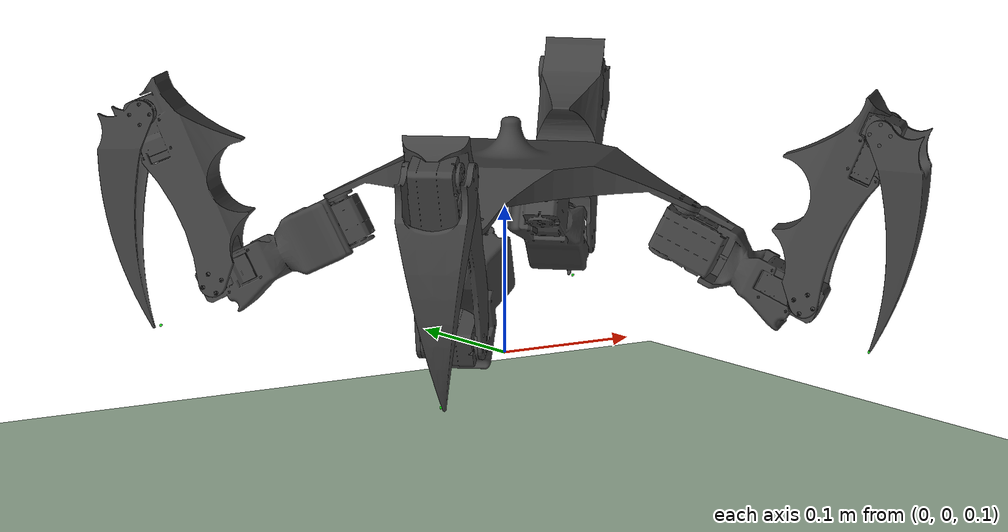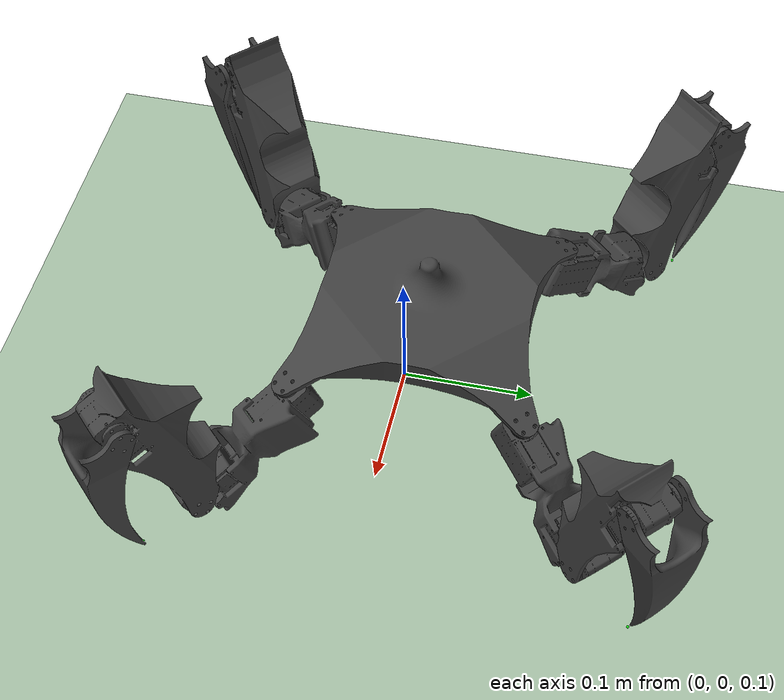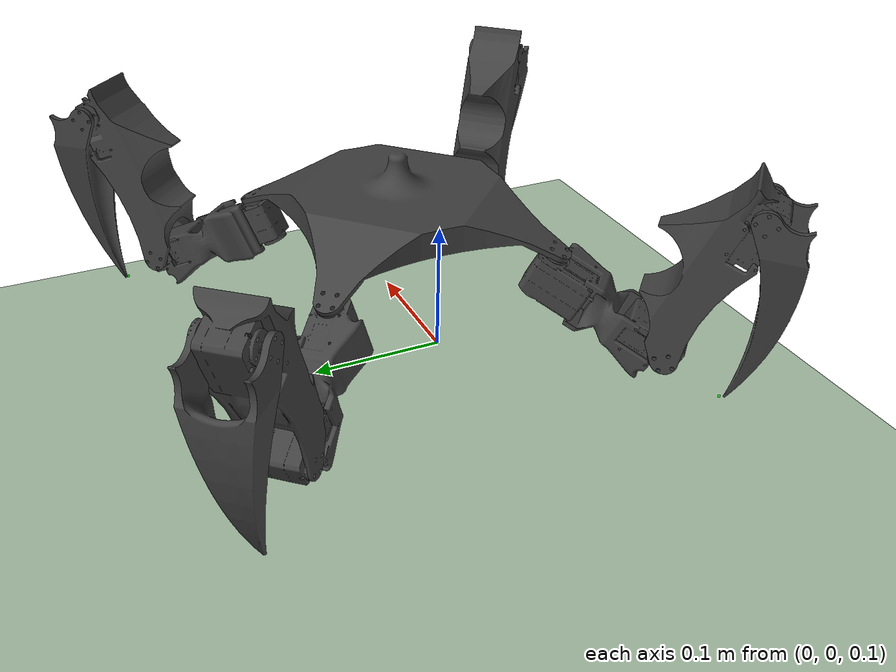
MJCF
<mujoco model="Bot1">
  <compiler angle="radian" meshdir="./"/>

  <!-- Simulation options with better contact handling -->
  <option timestep="0.002" iterations="50" solver="Newton" tolerance="1e-10">
    <flag contact="enable" gravity="enable"/>
  </option>

  <!-- Default settings for stiff joint limits and friction -->
  <default>
    <joint solimplimit="0.999 0.999 0.001" solreflimit="0.005 1" armature="0.01"/>
    <!-- Default friction: sliding, torsional, rolling -->
    <geom friction="1.5 0.005 0.001" solimp="0.95 0.99 0.001" solref="0.002 1" condim="4"/>
  </default>

  <asset>
    <mesh name="part_1" content_type="model/stl" file="part_1.stl"/>
    <mesh name="part_1__2" content_type="model/stl" file="part_1__2.stl"/>
    <mesh name="part_1__3" content_type="model/stl" file="part_1__3.stl"/>
    <mesh name="part_1__4" content_type="model/stl" file="part_1__4.stl"/>
    <!-- Terrain texture -->
    <texture name="grid" type="2d" builtin="checker" width="512" height="512" rgb1="0.7 0.8 0.7" rgb2="0.6 0.7 0.6"/>
    <material name="grid_mat" texture="grid" texrepeat="20 20"/>
  </asset>

  <worldbody>
    <!-- Ground plane with high friction -->
    <geom name="floor" type="plane" size="10 10 0.1" material="grid_mat" friction="1.5 0.01 0.001"/>

    <body name="part_1" pos="0 0 0.2">
      <inertial pos="0.0209601 0.0241499 0.0199273" quat="0.5 0.5 -0.5 0.5" mass="0.552084" diaginertia="0.00201256 0.0010312 0.0010312"/>
      <joint name="floor_to_base" type="free"/>
      <!-- Visual mesh (no collision) -->
      <geom pos="-0.0290399 -0.0153501 0.0106225" quat="1 5.21775e-08 -2.02329e-09 1.35415e-08" type="mesh" contype="0" conaffinity="0" rgba="0.25098 0.25098 0.25098 1" mesh="part_1" />

      <body name="part_1_2" pos="-0.063914 -0.0607244 -0.00112728" quat="0.382923 0.21134 0.0847142 -0.895282">
        <inertial pos="0.0508216 0.00300079 -0.0201979" quat="0.28265 0.663346 0.272142 0.637197" mass="0.139372" diaginertia="0.000187026 0.000186955 2.81071e-05"/>
        <joint limited="true" name="sh_roll_1" pos="0 0 0" axis="0 0 1" range="-2.22431 2.10411"/>
        <geom pos="-0.595484 -1.2957 0.863499" quat="1.32679e-06 1 0 0" type="mesh" contype="0" conaffinity="0" rgba="0.25098 0.25098 0.25098 1" mesh="part_1__2" />
        <body name="part_1_3" pos="0.1016 -0.0172 -0.0172" quat="-0.487469 0.487469 0.512225 0.512224">
          <inertial pos="0.0786937 -0.0129147 0.0184042" quat="0.466512 0.502695 0.4988 0.529964" mass="0.191635" diaginertia="0.000252901 0.000249902 5.35798e-05"/>
          <joint limited="true" name="sh_yaw_1" pos="0 0 0" axis="0 0 1" range="-0.0202957 2.99912"/>
          <geom pos="-0.600864 0.882908 1.34578" quat="1.32679e-06 1 0 0" type="mesh" contype="0" conaffinity="0" rgba="0.25098 0.25098 0.25098 1" mesh="part_1__3" />
          <body name="part_1_4" pos="0.1253 0 -0.0007">
            <inertial pos="-0.0423193 0.0357184 0.0189022" quat="0.590331 0.590316 0.389231 0.389275" mass="0.0518909" diaginertia="5.92899e-05 5.27497e-05 1.31168e-05"/>
            <joint limited="true" name="kn_yaw_1" pos="0 0 0" axis="0 0 1" range="-1.8675 0"/>
            <geom pos="0 0 0" quat="0.566404 0 0 -0.824127" type="mesh" contype="0" conaffinity="0" rgba="0.25098 0.25098 0.25098 1" mesh="part_1__4"/>
            <!-- Foot contact sphere -->
            <geom name="foot1_contact" type="sphere" size="0.001" pos="-0.14 0.05 0.02" rgba="0 1 0 0.8" friction="2.0 0.02 0.002"/>
          </body>
        </body>
      </body>
      <body name="part_1_5" pos="0.105834 -0.0607243 -0.00112728" quat="0.897395 0.0858871 0.210866 -0.377943">
        <inertial pos="0.0508216 0.00300079 -0.0201979" quat="0.28265 0.663346 0.272142 0.637197" mass="0.139372" diaginertia="0.000187026 0.000186955 2.81071e-05"/>
        <joint limited="true" name="sh_roll_2" pos="0 0 0" axis="0 0 1" range="-2.1763 2.12593"/>
        <geom pos="-0.595484 -1.2957 0.863499" quat="1.32679e-06 1 0 0" type="mesh" contype="0" conaffinity="0" rgba="0.25098 0.25098 0.25098 1" mesh="part_1__2" />
        <body name="part_1_6" pos="0.1016 -0.0172 -0.0172" quat="-0.486859 0.486859 0.512805 0.512804">
          <inertial pos="0.0786937 -0.0129147 0.0184042" quat="0.466512 0.502695 0.4988 0.529964" mass="0.191635" diaginertia="0.000252901 0.000249902 5.35798e-05"/>
          <joint limited="true" name="sh_yaw_2" pos="0 0 0" axis="0 0 1" range="-0.00046306 3.01728"/>
          <geom pos="-0.600864 0.882908 1.34578" quat="1.32679e-06 1 0 0" type="mesh" contype="0" conaffinity="0" rgba="0.25098 0.25098 0.25098 1" mesh="part_1__3" />
          <body name="part_1_7" pos="0.1253 0 -0.0007" quat="0.572069 0 0 -0.820205">
            <inertial pos="-0.0181801 -0.0523088 0.0189022" quat="0.706958 0.706995 -0.0135554 -0.0135832" mass="0.0518909" diaginertia="5.929e-05 5.27497e-05 1.31167e-05"/>
            <joint limited="true" name="kn_yaw_2" pos="0 0 0" axis="0 0 1" range="-1.89874 0.00367303"/>
            <geom pos="0 0 0" quat="1 0 0 0" type="mesh" contype="0" conaffinity="0" rgba="0.25098 0.25098 0.25098 1" mesh="part_1__4"/>
            <!-- Foot contact sphere -->
            <geom name="foot2_contact" type="sphere" size="0.001" pos="0 -0.15 0.02" rgba="0 1 0 0.8" friction="2.0 0.02 0.002"/>
          </body>
        </body>
      </body>
      <body name="part_1_8" pos="0.105834 0.109024 -0.00112726" quat="0.973371 -0.165335 0.156542 -0.0265898">
        <inertial pos="0.030927 0.0404396 -0.0201979" quat="0.523111 0.697014 0.00908574 -0.490351" mass="0.139372" diaginertia="0.000187026 0.000186955 2.8107e-05"/>
        <joint limited="true" name="sh_roll_3" pos="0 0 0" axis="0 0 1" range="-2.22029 2.10813"/>
        <geom pos="0.592033 -1.29728 0.863499" quat="1.20631e-06 0.909188 0.416385 5.52458e-07" type="mesh" contype="0" conaffinity="0" rgba="0.25098 0.25098 0.25098 1" mesh="part_1__2" />
        <body name="part_1_9" pos="0.0793927 0.0656901 -0.0172" quat="0.642892 -0.642894 -0.294429 0.294428">
          <inertial pos="-0.0182232 -0.0776363 0.0184042" quat="0.705732 0.707663 -0.0267869 0.0209295" mass="0.191635" diaginertia="0.000252901 0.000249902 5.35798e-05"/>
          <joint limited="true" name="sh_yaw_3" pos="0 0 0" axis="0 0 1" range="-0.00192597 3.00877"/>
          <geom pos="0.921634 0.539587 1.34578" quat="9.05808e-07 0.682704 -0.730695 -9.69483e-07" type="mesh" contype="0" conaffinity="0" rgba="0.25098 0.25098 0.25098 1" mesh="part_1__3" />
          <body name="part_1_10" pos="-0.00849973 -0.125011 -0.0007" quat="0.211057 0 0 0.977474">
            <inertial pos="-0.0181801 -0.0523088 0.0189022" quat="0.706958 0.706995 -0.0135554 -0.0135832" mass="0.0518909" diaginertia="5.929e-05 5.27497e-05 1.31167e-05"/>
            <joint limited="true" name="kn_yaw_3" pos="0 0 0" axis="0 0 1" range="-1.86497 0.0123759"/>
            <geom pos="0 0 0" quat="1 0 0 0" type="mesh" contype="0" conaffinity="0" rgba="0.25098 0.25098 0.25098 1" mesh="part_1__4"/>
            <!-- Foot contact sphere -->
            <geom name="foot3_contact" type="sphere" size="0.001" pos="0 -0.15 0.02" rgba="0 1 0 0.8" friction="2.0 0.02 0.002"/>
          </body>
        </body>
      </body>
      <body name="part_1_11" pos="-0.0639141 0.109024 -0.00112726" quat="0.344134 -0.207508 0.0937099 0.910895">
        <inertial pos="0.0508216 0.00300079 -0.0201979" quat="0.28265 0.663346 0.272142 0.637197" mass="0.139372" diaginertia="0.000187026 0.000186955 2.81071e-05"/>
        <joint limited="true" name="sh_roll_4" pos="0 0 0" axis="0 0 1" range="-2.2539 2.0686"/>
        <geom pos="-0.595484 -1.2957 0.863499" quat="1.32679e-06 1 0 0" type="mesh" contype="0" conaffinity="0" rgba="0.25098 0.25098 0.25098 1" mesh="part_1__2" />
        <body name="part_1_12" pos="0.1016 -0.0172 -0.0172" quat="0.707105 -0.707108 0 0">
          <inertial pos="-0.0174934 -0.077804 0.0184042" quat="0.705627 0.70778 -0.0234651 0.024243" mass="0.191635" diaginertia="0.000252901 0.000249902 5.35797e-05"/>
          <joint limited="true" name="sh_yaw_4" pos="0 0 0" axis="0 0 1" range="-0.00288512 3.0168"/>
          <geom pos="0.916527 0.548217 1.34578" quat="9.10349e-07 0.686127 -0.727482 -9.6522e-07" type="mesh" contype="0" conaffinity="0" rgba="0.25098 0.25098 0.25098 1" mesh="part_1__3" />
          <body name="part_1_13" pos="-0.00732563 -0.125086 -0.0007" quat="0.686127 0 0 -0.727482">
            <inertial pos="-0.0422016 0.0358574 0.0189022" quat="0.590971 0.590956 0.38826 0.388304" mass="0.0518909" diaginertia="5.929e-05 5.27497e-05 1.31167e-05"/>
            <joint limited="true" name="kn_yaw_4" pos="0 0 0" axis="0 0 1" range="-1.84416 0.0207427"/>
            <geom pos="0 0 0" quat="0.565052 0 0 -0.825055" type="mesh" contype="0" conaffinity="0" rgba="0.25098 0.25098 0.25098 1" mesh="part_1__4"/>
            <!-- Foot contact sphere -->
            <geom name="foot4_contact" type="sphere" size="0.001" pos="-0.14 0.05 0.02" rgba="0 1 0 0.8" friction="2.0 0.02 0.002"/>
          </body>
        </body>
      </body>
    </body>
  </worldbody>

  <actuator>
    <!-- Leg 1 -->
    <motor name="sh_roll_1_motor" joint="sh_roll_1" gear="3" ctrlrange="-10 10"/>
    <motor name="sh_yaw_1_motor" joint="sh_yaw_1" gear="3" ctrlrange="-10 10"/>
    <motor name="kn_yaw_1_motor" joint="kn_yaw_1" gear="3" ctrlrange="-10 10"/>

    <!-- Leg 2 -->
    <motor name="sh_roll_2_motor" joint="sh_roll_2" gear="3" ctrlrange="-10 10"/>
    <motor name="sh_yaw_2_motor" joint="sh_yaw_2" gear="3" ctrlrange="-10 10"/>
    <motor name="kn_yaw_2_motor" joint="kn_yaw_2" gear="3" ctrlrange="-10 10"/>

    <!-- Leg 3 -->
    <motor name="sh_roll_3_motor" joint="sh_roll_3" gear="3" ctrlrange="-10 10"/>
    <motor name="sh_yaw_3_motor" joint="sh_yaw_3" gear="3" ctrlrange="-10 10"/>
    <motor name="kn_yaw_3_motor" joint="kn_yaw_3" gear="3" ctrlrange="-10 10"/>

    <!-- Leg 4 -->
    <motor name="sh_roll_4_motor" joint="sh_roll_4" gear="3" ctrlrange="-10 10"/>
    <motor name="sh_yaw_4_motor" joint="sh_yaw_4" gear="3" ctrlrange="-10 10"/>
    <motor name="kn_yaw_4_motor" joint="kn_yaw_4" gear="3" ctrlrange="-10 10"/>
  </actuator>
</mujoco>
